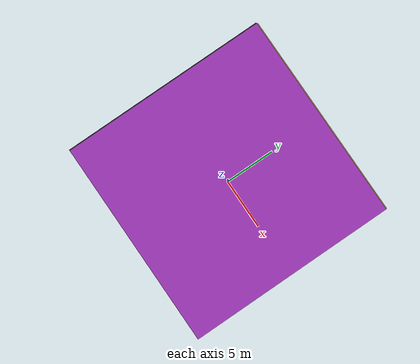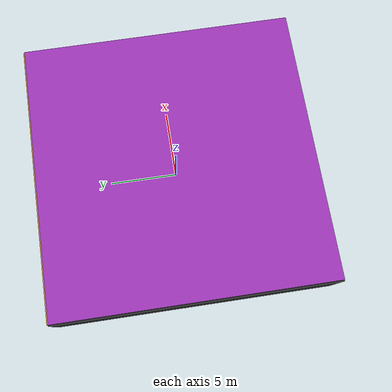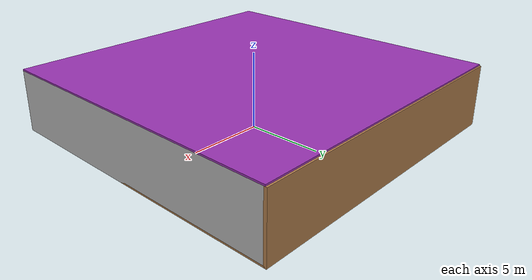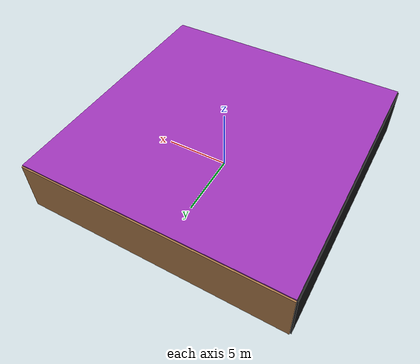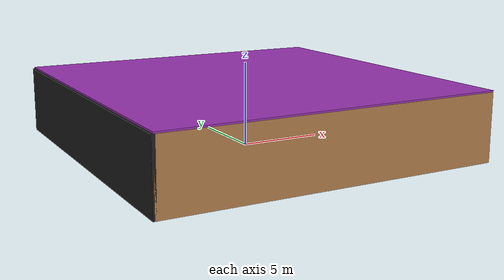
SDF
<sdf version="1.4">
 <world name="default">
  <physics type="ode">
   <max_step_size>0.001</max_step_size>
   <real_time_factor>1</real_time_factor>
   <real_time_update_rate>1000</real_time_update_rate>
   <gravity>0 0 -9.8</gravity>
  </physics>
  <scene><ambient>0.4 0.4 0.4 1</ambient><background>0.7 0.7 0.7 1</background><shadows>1</shadows></scene>
  <model name="Surrounding">
   <static>1</static>
   <link name="Ceiling">
    <collision name="Ceiling_Collision"><geometry><box><size>20 20 0.1</size></box></geometry></collision>
    <visual name="Ceiling_Visual">
     <geometry><box><size>20 20 0.1</size></box></geometry>
     <material>
      <script><uri>file://media/materials/scripts/gazebo.material</uri><name>Gazebo/PurpleGlow</name></script>
     </material>
    </visual>
    <pose>0 0 4.05 0 0 0</pose>
   </link>
   <link name="Wall_South">
    <collision name="Wall_South_Collision">
     <geometry><box><size>20 0 4</size></box></geometry>
     <pose>0 0 2 0 -0 0</pose>
    </collision>
    <visual name="Wall_South_Visual">
     <pose>0 0 2 0 -0 0</pose>
     <geometry><box><size>20 0 4</size></box></geometry>
     <material>
      <script><uri>file://media/materials/scripts/gazebo.material</uri><name>Gazebo/WoodPallet</name></script>
     </material>
    </visual>
    <velocity_decay><linear>0</linear><angular>0</angular></velocity_decay>
    <pose>0 -10 0 0 -0 0</pose>
   </link>
   <link name="Wall_East">
    <collision name="Wall_21_Collision">
     <geometry><box><size>20 0 4</size></box></geometry>
     <pose>0 0 2 0 -0 0</pose>
    </collision>
    <visual name="Wall_21_Visual">
     <pose>0 0 2 0 -0 0</pose>
     <geometry><box><size>20 0 4</size></box></geometry>
     <material>
      <script><uri>file://media/materials/scripts/gazebo.material</uri><name>Gazebo/PioneerBody</name></script>
     </material>
    </visual>
    <velocity_decay><linear>0</linear><angular>0</angular></velocity_decay>
    <pose>10 0 0 0 -0 1.5708</pose>
   </link>
   <link name="Wall_North">
    <collision name="Wall_22_Collision">
     <geometry><box><size>20 0.2 4</size></box></geometry>
     <pose>0 0 2 0 -0 0</pose>
    </collision>
    <visual name="Wall_22_Visual">
     <pose>0 0 2 0 -0 0</pose>
     <geometry><box><size>20 0.2 4</size></box></geometry>
     <material>
      <script><uri>file://media/materials/scripts/gazebo.material</uri><name>Gazebo/WoodFloor</name></script>
     </material>
    </visual>
    <velocity_decay><linear>0</linear><angular>0</angular></velocity_decay>
    <pose>0 10 0 0 -0 0</pose>
   </link>
   <link name="Wall_West">
    <collision name="Wall_23_Collision">
     <geometry><box><size>20 0.2 4</size></box></geometry>
     <pose>0 0 2 0 -0 0</pose>
    </collision>
    <visual name="Wall_23_Visual">
     <pose>0 0 2 0 -0 0</pose>
     <geometry><box><size>20 0.2 4</size></box></geometry>
     <material>
      <script><uri>file://media/materials/scripts/gazebo.material</uri><name>Gazebo/FlatBlack</name></script>
     </material>
    </visual>
    <velocity_decay><linear>0</linear><angular>0</angular></velocity_decay>
    <pose>-10 0 0 0 0 -1.5708</pose>
   </link>
   <link name="Ground_link">
    <collision name="collision">
     <pose>0 0 .05 0 -0 0</pose>
     <geometry><box><size>20 20 0.1</size></box></geometry>
    </collision>
    <visual name="visual">
     <pose>0 0 .05 0 -0 0</pose>
     <geometry><box><size>20 20 0.1</size></box></geometry>
     <material>
      <script><uri>file://media/materials/scripts/gazebo.material</uri><name>Gazebo/WoodPallet</name></script>
     </material>
    </visual>
   </link>
   <static>1</static>
  </model>
  <spherical_coordinates>
   <surface_model>EARTH_WGS84</surface_model>
   <latitude_deg>0</latitude_deg>
   <longitude_deg>0</longitude_deg>
   <elevation>0</elevation>
   <heading_deg>0</heading_deg>
  </spherical_coordinates>
  <light name="lightball_0" type="diffuse">
   <diffuse>0.8 0.8 0.8 1</diffuse>
   <specular>0.2 0.2 0.2 1</specular>
   <attenuation>
    <range>100</range>
    <constant>0.7</constant>
    <linear>0.01</linear>
    <quadratic>0.001</quadratic>
   </attenuation>
   <direction>-0.5 0.1 -0.9</direction>
   <pose>-7.57068237934 -7.95960537916 1.67877591695 0 0 0</pose>
  </light>
  <light name="lightball_1" type="diffuse">
   <diffuse>0.8 0.8 0.8 1</diffuse>
   <specular>0.2 0.2 0.2 1</specular>
   <attenuation>
    <range>100</range>
    <constant>0.7</constant>
    <linear>0.01</linear>
    <quadratic>0.001</quadratic>
   </attenuation>
   <direction>-0.5 0.1 -0.9</direction>
   <pose>1.25902331411 4.67810163167 3.39881052005 0 0 0</pose>
  </light>
  <light name="lightball_2" type="diffuse">
   <diffuse>0.8 0.8 0.8 1</diffuse>
   <specular>0.2 0.2 0.2 1</specular>
   <attenuation>
    <range>100</range>
    <constant>0.7</constant>
    <linear>0.01</linear>
    <quadratic>0.001</quadratic>
   </attenuation>
   <direction>-0.5 0.1 -0.9</direction>
   <pose>9.38227683435 9.71371495124 2.9074778586 0 0 0</pose>
  </light>
  <light name="lightball_3" type="diffuse">
   <diffuse>0.8 0.8 0.8 1</diffuse>
   <specular>0.2 0.2 0.2 1</specular>
   <attenuation>
    <range>100</range>
    <constant>0.7</constant>
    <linear>0.01</linear>
    <quadratic>0.001</quadratic>
   </attenuation>
   <direction>-0.5 0.1 -0.9</direction>
   <pose>6.59598102581 -2.76234062589 2.55650653152 0 0 0</pose>
  </light>
  <light name="lightball_4" type="diffuse">
   <diffuse>0.8 0.8 0.8 1</diffuse>
   <specular>0.2 0.2 0.2 1</specular>
   <attenuation>
    <range>100</range>
    <constant>0.7</constant>
    <linear>0.01</linear>
    <quadratic>0.001</quadratic>
   </attenuation>
   <direction>-0.5 0.1 -0.9</direction>
   <pose>-1.53878515343 7.06607046539 3.39493698986 0 0 0</pose>
  </light>
  <light name="lightball_5" type="diffuse">
   <diffuse>0.8 0.8 0.8 1</diffuse>
   <specular>0.2 0.2 0.2 1</specular>
   <attenuation>
    <range>100</range>
    <constant>0.7</constant>
    <linear>0.01</linear>
    <quadratic>0.001</quadratic>
   </attenuation>
   <direction>-0.5 0.1 -0.9</direction>
   <pose>0.168752143081 -7.97082499014 2.43074024085 0 0 0</pose>
  </light>
  <light name="lightball_6" type="diffuse">
   <diffuse>0.8 0.8 0.8 1</diffuse>
   <specular>0.2 0.2 0.2 1</specular>
   <attenuation>
    <range>100</range>
    <constant>0.7</constant>
    <linear>0.01</linear>
    <quadratic>0.001</quadratic>
   </attenuation>
   <direction>-0.5 0.1 -0.9</direction>
   <pose>-1.79687750731 1.05186929589 0.638668014411 0 0 0</pose>
  </light>
  <light name="lightball_7" type="diffuse">
   <diffuse>0.8 0.8 0.8 1</diffuse>
   <specular>0.2 0.2 0.2 1</specular>
   <attenuation>
    <range>100</range>
    <constant>0.7</constant>
    <linear>0.01</linear>
    <quadratic>0.001</quadratic>
   </attenuation>
   <direction>-0.5 0.1 -0.9</direction>
   <pose>4.25767476715 9.86241550258 2.52137420254 0 0 0</pose>
  </light>
  <light name="lightball_8" type="diffuse">
   <diffuse>0.8 0.8 0.8 1</diffuse>
   <specular>0.2 0.2 0.2 1</specular>
   <attenuation>
    <range>100</range>
    <constant>0.7</constant>
    <linear>0.01</linear>
    <quadratic>0.001</quadratic>
   </attenuation>
   <direction>-0.5 0.1 -0.9</direction>
   <pose>6.13807073808 -5.09512959586 3.68566875118 0 0 0</pose>
  </light>
  <light name="lightball_9" type="diffuse">
   <diffuse>0.8 0.8 0.8 1</diffuse>
   <specular>0.2 0.2 0.2 1</specular>
   <attenuation>
    <range>100</range>
    <constant>0.7</constant>
    <linear>0.01</linear>
    <quadratic>0.001</quadratic>
   </attenuation>
   <direction>-0.5 0.1 -0.9</direction>
   <pose>-5.56394522102 -2.69228440645 1.04111500034 0 0 0</pose>
  </light>
  <light name="lightball_10" type="diffuse">
   <diffuse>0.8 0.8 0.8 1</diffuse>
   <specular>0.2 0.2 0.2 1</specular>
   <attenuation>
    <range>100</range>
    <constant>0.7</constant>
    <linear>0.01</linear>
    <quadratic>0.001</quadratic>
   </attenuation>
   <direction>-0.5 0.1 -0.9</direction>
   <pose>7.71476268539 -8.2905166974 0.720231267977 0 0 0</pose>
  </light>
  <light name="lightball_11" type="diffuse">
   <diffuse>0.8 0.8 0.8 1</diffuse>
   <specular>0.2 0.2 0.2 1</specular>
   <attenuation>
    <range>100</range>
    <constant>0.7</constant>
    <linear>0.01</linear>
    <quadratic>0.001</quadratic>
   </attenuation>
   <direction>-0.5 0.1 -0.9</direction>
   <pose>5.13070331366 -3.36025358731 3.66379808302 0 0 0</pose>
  </light>
  <include><uri>model://cabinet</uri><pose>-8.25713555027 -7.9384947923 0 0 0 0.258322168588</pose></include>
  <include><uri>model://table</uri><pose>1.70549274842 0.772075755736 0 0 0 2.29794452454</pose></include>
  <include>
   <uri>model://construction_cone</uri>
   <pose>1.6707724923 8.03112796251 0 0 0 2.26844034691</pose>
  </include>
  <include><uri>model://cabinet</uri><pose>4.57694350715 8.14853088923 0 0 0 0.72975182181</pose></include>
 </world>
</sdf>

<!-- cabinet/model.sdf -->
<sdf version="1.5">
  <model name="cabinet">
    <static>true</static>
    <link name="cabinet_bottom_plate">
      <inertial>
        <pose>0 0 -1 0 0 0</pose>
        <inertia>
          <ixx>2.050000</ixx>
          <ixy>0</ixy>
          <ixz>0</ixz>
          <iyy>2.050000</iyy>
          <iyz>0</iyz>
          <izz>2.050000</izz>
        </inertia>
        <mass>25.000000</mass>
      </inertial>
      <collision name="cabinet_bottom_plate_geom">
        <pose>0 0 0.010000 0 0 0</pose>
        <geometry>
          <box>
            <size>0.450000 0.450000 0.020000</size>
          </box>
        </geometry>
      </collision>
      <visual name="cabinet_bottom_plate_geom_visual">
        <pose>0 0 0.010000 0 0 0</pose>
        <geometry>
          <box>
            <size>0.450000 0.450000 0.020000</size>
          </box>
        </geometry>
        <material>
          <script>
            <uri>model://media/materials/scripts/gazebo.material</uri>
            <name>Gazebo/Wood</name>
          </script>
        </material>
      </visual>
      <collision name="cabinet_bottom_plate_geom_cabinet_back_plate">
        <pose>0.235000 0 0.510000 0 0 0</pose>
        <geometry>
          <box>
            <size>0.020000 0.450000 1.020000</size>
          </box>
        </geometry>
      </collision>
      <visual name="cabinet_bottom_plate_geom_cabinet_back_plate_visual">
        <pose>0.235000 0 0.510000 0 0 0</pose>
        <geometry>
          <box>
            <size>0.020000 0.450000 1.020000</size>
          </box>
        </geometry>
        <material>
          <script>
            <uri>model://media/materials/scripts/gazebo.material</uri>
            <name>Gazebo/Wood</name>
          </script>
        </material>
      </visual>
      <collision name="cabinet_bottom_plate_geom_cabinet_left_plate">
        <pose>0 0.235000 0.510000 0 0 0</pose>
        <geometry>
          <box>
            <size>0.450000 0.020000 1.020000</size>
          </box>
        </geometry>
      </collision>
      <visual name="cabinet_bottom_plate_geom_cabinet_left_plate_visual">
        <pose>0 0.235000 0.510000 0 0 0</pose>
        <geometry>
          <box>
            <size>0.450000 0.020000 1.020000</size>
          </box>
        </geometry>
        <material>
          <script>
            <uri>model://media/materials/scripts/gazebo.material</uri>
            <name>Gazebo/Wood</name>
          </script>
        </material>
      </visual>
      <collision name="cabinet_bottom_plate_geom_cabinet_middle_plate">
        <pose>0 0 0.510000 0 0 0</pose>
        <geometry>
          <box>
            <size>0.450000 0.450000 0.020000</size>
          </box>
        </geometry>
      </collision>
      <visual name="cabinet_bottom_plate_geom_cabinet_middle_plate_visual">
        <pose>0 0 0.510000 0 0 0</pose>
        <geometry>
          <box>
            <size>0.450000 0.450000 0.020000</size>
          </box>
        </geometry>
        <material>
          <script>
            <uri>model://media/materials/scripts/gazebo.material</uri>
            <name>Gazebo/Wood</name>
          </script>
        </material>
      </visual>
      <collision name="cabinet_bottom_plate_geom_cabinet_right_plate">
        <pose>0 -0.235000 0.510000 0 0 0</pose>
        <geometry>
          <box>
            <size>0.450000 0.020000 1.020000</size>
          </box>
        </geometry>
      </collision>
      <visual name="cabinet_bottom_plate_geom_cabinet_right_plate_visual">
        <pose>0 -0.235000 0.510000 0 0 0</pose>
        <geometry>
          <box>
            <size>0.450000 0.020000 1.020000</size>
          </box>
        </geometry>
        <material>
          <script>
            <uri>model://media/materials/scripts/gazebo.material</uri>
            <name>Gazebo/Wood</name>
          </script>
        </material>
      </visual>
      <collision name="cabinet_bottom_plate_geom_cabinet_top_plate">
        <pose>0 0 1.010000 0 0 0</pose>
        <geometry>
          <box>
            <size>0.450000 0.450000 0.020000</size>
          </box>
        </geometry>
      </collision>
      <visual name="cabinet_bottom_plate_geom_cabinet_top_plate_visual">
        <pose>0 0 1.010000 0 0 0</pose>
        <geometry>
          <box>
            <size>0.450000 0.450000 0.020000</size>
          </box>
        </geometry>
        <material>
          <script>
            <uri>model://media/materials/scripts/gazebo.material</uri>
            <name>Gazebo/Wood</name>
          </script>
        </material>
      </visual>
    </link>
  </model>
</sdf>

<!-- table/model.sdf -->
<sdf version="1.5">
  <model name="table">
    <static>true</static>
    <link name="link">
      <collision name="surface">
        <pose>0 0 1.0 0 0 0</pose>
        <geometry>
          <box>
            <size>1.5 0.8 0.03</size>
          </box>
        </geometry>
        <surface>
          <friction>
            <ode>
              <mu>0.6</mu>
              <mu2>0.6</mu2>
            </ode>
          </friction>
        </surface>
      </collision>
      <visual name="visual1">
        <pose>0 0 1.0 0 0 0</pose>
        <geometry>
          <box>
            <size>1.5 0.8 0.03</size>
          </box>
        </geometry>
        <material>
          <script>
            <uri>model://media/materials/scripts/gazebo.material</uri>
            <name>Gazebo/Wood</name>
          </script>
        </material>
      </visual>
      <collision name="front_left_leg">
        <pose>0.68 0.38 0.5 0 0 0</pose>
        <geometry>
          <cylinder>
            <radius>0.02</radius>
            <length>1.0</length>
          </cylinder>
        </geometry>
      </collision>
      <visual name="front_left_leg">
        <pose>0.68 0.38 0.5 0 0 0</pose>
        <geometry>
          <cylinder>
            <radius>0.02</radius>
            <length>1.0</length>
          </cylinder>
        </geometry>
        <material>
          <script>
            <uri>model://media/materials/scripts/gazebo.material</uri>
            <name>Gazebo/Grey</name>
          </script>
        </material>
      </visual>
      <collision name="front_right_leg">
        <pose>0.68 -0.38 0.5 0 0 0</pose>
        <geometry>
          <cylinder>
            <radius>0.02</radius>
            <length>1.0</length>
          </cylinder>
        </geometry>
      </collision>
      <visual name="front_right_leg">
        <pose>0.68 -0.38 0.5 0 0 0</pose>
        <geometry>
          <cylinder>
            <radius>0.02</radius>
            <length>1.0</length>
          </cylinder>
        </geometry>
        <material>
          <script>
            <uri>model://media/materials/scripts/gazebo.material</uri>
            <name>Gazebo/Grey</name>
          </script>
        </material>
      </visual>
      <collision name="back_right_leg">
        <pose>-0.68 -0.38 0.5 0 0 0</pose>
        <geometry>
          <cylinder>
            <radius>0.02</radius>
            <length>1.0</length>
          </cylinder>
        </geometry>
      </collision>
      <visual name="back_right_leg">
        <pose>-0.68 -0.38 0.5 0 0 0</pose>
        <geometry>
          <cylinder>
            <radius>0.02</radius>
            <length>1.0</length>
          </cylinder>
        </geometry>
        <material>
          <script>
            <uri>model://media/materials/scripts/gazebo.material</uri>
            <name>Gazebo/Grey</name>
          </script>
        </material>
      </visual>
      <collision name="back_left_leg">
        <pose>-0.68 0.38 0.5 0 0 0</pose>
        <geometry>
          <cylinder>
            <radius>0.02</radius>
            <length>1.0</length>
          </cylinder>
        </geometry>
      </collision>
      <visual name="back_left_leg">
        <pose>-0.68 0.38 0.5 0 0 0</pose>
        <geometry>
          <cylinder>
            <radius>0.02</radius>
            <length>1.0</length>
          </cylinder>
        </geometry>
        <material>
          <script>
            <uri>model://media/materials/scripts/gazebo.material</uri>
            <name>Gazebo/Grey</name>
          </script>
        </material>
      </visual>
    </link>
  </model>
</sdf>

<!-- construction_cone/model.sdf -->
<sdf version="1.5">
  <model name="Construction Cone">
    <link name="link">
      <collision name="collision">
        <geometry>
          <mesh>
            <scale>10 10 10</scale>
            <uri>file://isr-testbed/construction_cone/meshes/construction_cone.dae</uri>
          </mesh>
        </geometry>
      </collision>
      <visual name="visual">
        <geometry>
          <mesh>
            <scale>10 10 10</scale>
            <uri>file://isr-testbed/construction_cone/meshes/construction_cone.dae</uri>
          </mesh>
        </geometry>
      </visual>
    </link>
  </model>
</sdf>
